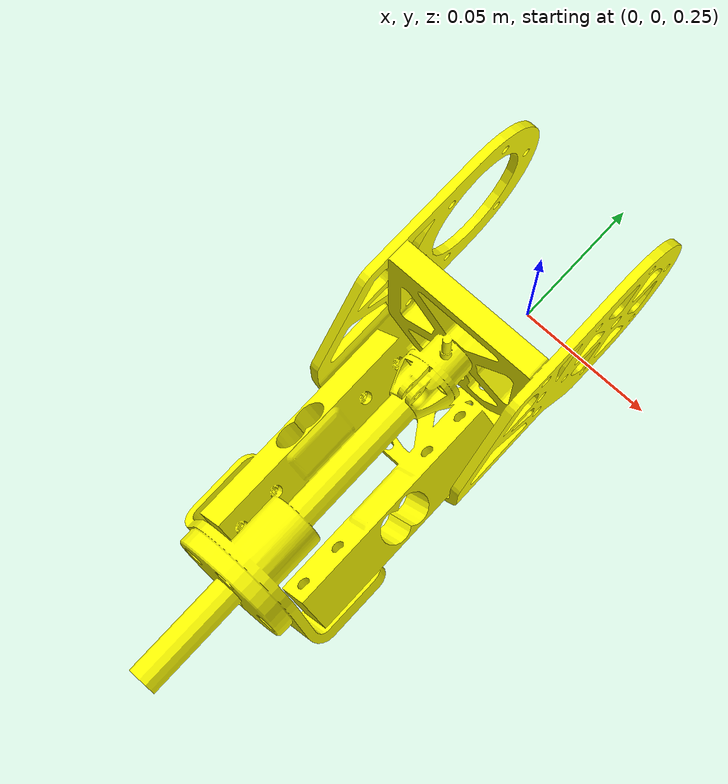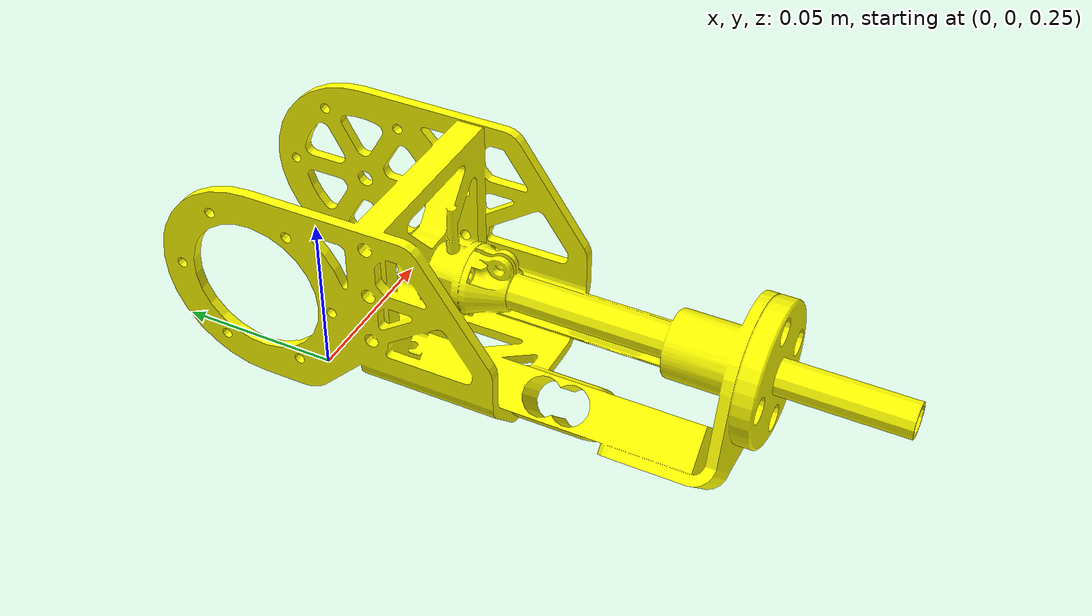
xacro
<?xml version="1.0"?>
<robot xmlns:xacro="http://www.ros.org/wiki/xacro" name="ankle_link_only">

    <!-- INCLUDES                                                               -->
    <xacro:include filename="ankle_link_gazebo.xacro" />

    <!-- MATERIALS                                                              -->
    <material name="yellow">
        <color rgba="1.0 1.0 0.0 1.0" />
    </material>

    <!-- PHYSICAL PROPERTIES                                                    -->

    <!-- Ankle Link Mass -->
    <xacro:property name="mass_ankle" value="0.721" />

    <!-- Ankle Link Center of Mass (Inertial Frame Origin) -->
    <xacro:property name="ankle_inertial_x" value="0.004248" />
    <xacro:property name="ankle_inertial_y" value="-0.046" />
    <xacro:property name="ankle_inertial_z" value="0.0004" />

    <!-- Ankle Link Inertia Tensor -->
    <xacro:property name="ankle_ixx" value="0.00320" />
    <xacro:property name="ankle_ixy" value="0.00019" />
    <xacro:property name="ankle_ixz" value="-0.00004" />
    <xacro:property name="ankle_iyy" value="0.00141" />
    <xacro:property name="ankle_iyz" value="-0.00083" />
    <xacro:property name="ankle_izz" value="0.00280" />

    <!-- Joint Limits -->
    <xacro:property name="joint_effort_limit" value="50.0" />
    <xacro:property name="joint_velocity_limit" value="50.0" />

    <!-- Joint Dynamics -->
    <xacro:property name="joint_damping" value="0.00130" />
    <xacro:property name="joint_friction" value="0.0140" />

    <!-- WORLD LINK (Fixed Root)                                                -->
    <link name="world">
        <!-- Empty link - serves as fixed world reference -->
    </link>

    <gazebo reference="world">
        <static>true</static>
    </gazebo>

    <!-- WORLD TO ANKLE JOINT (Continuous - Pendulum)                           -->
    <joint name="world_to_ankle" type="continuous">
        <parent link="world" />
        <child link="ankle_link" />
        <!-- Position: 1.0 m above ground -->
        <origin xyz="0 0 0.3" rpy="0 1.5701 0" />
        <!-- Rotation axis: Y-axis (pitch motion) -->
        <axis xyz="0 0 1" />
        <!-- Joint limits -->
        <limit effort="${joint_effort_limit}" velocity="${joint_velocity_limit}" />
        <!-- Joint damping and friction -->
        <dynamics damping="${joint_damping}" friction="${joint_friction}" />
    </joint>

    <!-- ANKLE LINK                                                             -->
    <link name="ankle_link">

        <!-- Inertial Properties -->
        <inertial>
            <origin
                xyz="${ankle_inertial_x} ${ankle_inertial_y} ${ankle_inertial_z}"
                rpy="0 0 0" />
            <mass value="${mass_ankle}" />
            <inertia
                ixx="${ankle_ixx}"  ixy="${ankle_ixy}"  ixz="${ankle_ixz}"
                                    iyy="${ankle_iyy}"  iyz="${ankle_iyz}"
                                                       izz="${ankle_izz}" />
        </inertial>

        <!-- Visual Representation -->
        <visual>
            <origin xyz="0 0 0" rpy="0 0 0" />
            <geometry>
                <mesh filename="package://system_identification_description/meshes/ankle_link.STL" />
            </geometry>
            <material name="yellow" />
        </visual>

        <!-- Collision Geometry -->
        <collision>
            <origin xyz="0 0 0" rpy="0 0 0" />
            <geometry>
                <cylinder length="0.2" radius="0.025" />
            </geometry>
        </collision>

    </link>

</robot>
